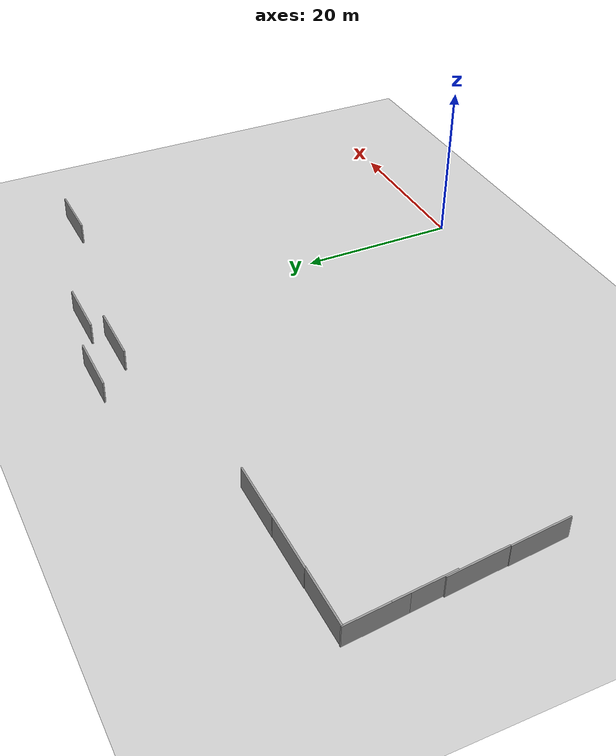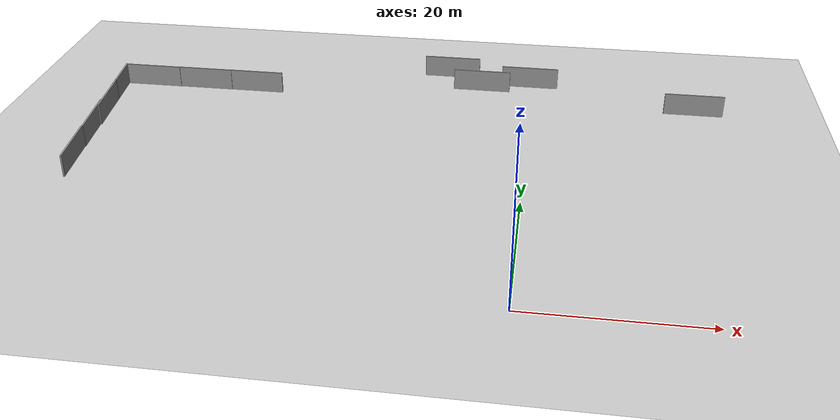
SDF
<sdf version="1.6">
 <world name="default">
  <light name="sun" type="directional">
   <pose>0 0 15 0 -0 0</pose>
   <diffuse>0.8 0.8 0.8 1</diffuse>
   <specular>0.2 0.2 0.2 1</specular>
   <attenuation>
    <range>1000</range>
    <constant>0.9</constant>
    <linear>0.01</linear>
    <quadratic>0.001</quadratic>
   </attenuation>
   <direction>-0.5 0.1 -0.9</direction>
  </light>
  <model name="ground_plane">
   <static>1</static>
   <link name="link">
    <collision name="collision">
     <geometry><plane><normal>0 0 1</normal><size>100 100</size></plane></geometry>
     <surface><friction><ode><mu>100</mu><mu2>50</mu2></ode></friction></surface>
    </collision>
    <visual name="visual">
     <transparency>1</transparency>
     <cast_shadows>0</cast_shadows>
     <geometry><plane><normal>0 0 1</normal><size>100 100</size></plane></geometry>
     <material>
      <script><uri>file://media/materials/scripts/gazebo.material</uri><name>Gazebo/Grey</name></script>
     </material>
    </visual>
   </link>
  </model>
  <gravity>0 0 -9.8</gravity>
  <magnetic_field>6e-06 2.3e-05 -4.2e-05</magnetic_field>
  <atmosphere type="adiabatic"/>
  <physics name="default_physics" default="0" type="ode">
   <max_step_size>0.001</max_step_size>
   <real_time_factor>1</real_time_factor>
   <real_time_update_rate>1000</real_time_update_rate>
  </physics>
  <scene><ambient>0.4 0.4 0.4 1</ambient><background>0.7 0.7 0.7 1</background><shadows>1</shadows></scene>
  <spherical_coordinates>
   <surface_model>EARTH_WGS84</surface_model>
   <latitude_deg>0</latitude_deg>
   <longitude_deg>0</longitude_deg>
   <elevation>0</elevation>
   <heading_deg>0</heading_deg>
  </spherical_coordinates>
  <model name="grey_wall">
   <static>1</static>
   <link name="link">
    <pose>0 0 1.4 0 -0 0</pose>
    <collision name="collision"><geometry><box><size>7.5 0.2 2.8</size></box></geometry></collision>
    <visual name="visual">
     <cast_shadows>0</cast_shadows>
     <geometry><box><size>7.5 0.2 2.8</size></box></geometry>
     <material>
      <script>
       <uri>model://grey_wall/materials/scripts</uri>
       <uri>model://grey_wall/materials/textures</uri>
       <name>vrc/grey_wall</name>
      </script>
     </material>
    </visual>
   </link>
   <pose>20.945 45.2821 0 0 -0 0</pose>
  </model>
  <model name="grey_wall_0">
   <static>1</static>
   <link name="link">
    <pose>0 0 1.4 0 -0 0</pose>
    <collision name="collision"><geometry><box><size>7.5 0.2 2.8</size></box></geometry></collision>
    <visual name="visual">
     <cast_shadows>0</cast_shadows>
     <geometry><box><size>7.5 0.2 2.8</size></box></geometry>
     <material>
      <script>
       <uri>model://grey_wall/materials/scripts</uri>
       <uri>model://grey_wall/materials/textures</uri>
       <name>vrc/grey_wall</name>
      </script>
     </material>
    </visual>
   </link>
   <pose>-0.40743 50.8715 0 0 -0 0</pose>
  </model>
  <model name="grey_wall_1">
   <static>1</static>
   <link name="link">
    <pose>0 0 1.4 0 -0 0</pose>
    <collision name="collision"><geometry><box><size>7.5 0.2 2.8</size></box></geometry></collision>
    <visual name="visual">
     <cast_shadows>0</cast_shadows>
     <geometry><box><size>7.5 0.2 2.8</size></box></geometry>
     <material>
      <script>
       <uri>model://grey_wall/materials/scripts</uri>
       <uri>model://grey_wall/materials/textures</uri>
       <name>vrc/grey_wall</name>
      </script>
     </material>
    </visual>
   </link>
   <pose>-6.76037 48.9459 0 0 -0 0</pose>
  </model>
  <model name="grey_wall_2">
   <static>1</static>
   <link name="link">
    <pose>0 0 1.4 0 -0 0</pose>
    <collision name="collision"><geometry><box><size>7.5 0.2 2.8</size></box></geometry></collision>
    <visual name="visual">
     <cast_shadows>0</cast_shadows>
     <geometry><box><size>7.5 0.2 2.8</size></box></geometry>
     <material>
      <script>
       <uri>model://grey_wall/materials/scripts</uri>
       <uri>model://grey_wall/materials/textures</uri>
       <name>vrc/grey_wall</name>
      </script>
     </material>
    </visual>
   </link>
   <pose>-11.149 52.8969 0 0 -0 0</pose>
  </model>
  <model name="grey_wall_3">
   <static>1</static>
   <link name="link">
    <pose>0 0 1.4 0 -0 0</pose>
    <collision name="collision"><geometry><box><size>7.5 0.2 2.8</size></box></geometry></collision>
    <visual name="visual">
     <cast_shadows>0</cast_shadows>
     <geometry><box><size>7.5 0.2 2.8</size></box></geometry>
     <material>
      <script>
       <uri>model://grey_wall/materials/scripts</uri>
       <uri>model://grey_wall/materials/textures</uri>
       <name>vrc/grey_wall</name>
      </script>
     </material>
    </visual>
   </link>
   <pose>-37.1072 44.3981 0 0 -0 0</pose>
  </model>
  <model name="grey_wall_4">
   <static>1</static>
   <link name="link">
    <pose>0 0 1.4 0 -0 0</pose>
    <collision name="collision"><geometry><box><size>7.5 0.2 2.8</size></box></geometry></collision>
    <visual name="visual">
     <cast_shadows>0</cast_shadows>
     <geometry><box><size>7.5 0.2 2.8</size></box></geometry>
     <material>
      <script>
       <uri>model://grey_wall/materials/scripts</uri>
       <uri>model://grey_wall/materials/textures</uri>
       <name>vrc/grey_wall</name>
      </script>
     </material>
    </visual>
   </link>
   <pose>-44.1478 44.3641 0 0 -0 0</pose>
  </model>
  <model name="grey_wall_5">
   <static>1</static>
   <link name="link">
    <pose>0 0 1.4 0 -0 0</pose>
    <collision name="collision"><geometry><box><size>7.5 0.2 2.8</size></box></geometry></collision>
    <visual name="visual">
     <cast_shadows>0</cast_shadows>
     <geometry><box><size>7.5 0.2 2.8</size></box></geometry>
     <material>
      <script>
       <uri>model://grey_wall/materials/scripts</uri>
       <uri>model://grey_wall/materials/textures</uri>
       <name>vrc/grey_wall</name>
      </script>
     </material>
    </visual>
   </link>
   <pose>-51.3419 44.3159 0 0 -0 0</pose>
  </model>
  <model name="grey_wall_6">
   <static>1</static>
   <link name="link">
    <pose>0 0 1.4 0 -0 0</pose>
    <collision name="collision"><geometry><box><size>7.5 0.2 2.8</size></box></geometry></collision>
    <visual name="visual">
     <cast_shadows>0</cast_shadows>
     <geometry><box><size>7.5 0.2 2.8</size></box></geometry>
     <material>
      <script>
       <uri>model://grey_wall/materials/scripts</uri>
       <uri>model://grey_wall/materials/textures</uri>
       <name>vrc/grey_wall</name>
      </script>
     </material>
    </visual>
   </link>
   <pose>-53.2817 21.9356 0 0 0 -1.48014</pose>
  </model>
  <model name="grey_wall_6_clone">
   <static>1</static>
   <link name="link">
    <pose>0 0 1.4 0 -0 0</pose>
    <collision name="collision"><geometry><box><size>7.5 0.2 2.8</size></box></geometry></collision>
    <visual name="visual">
     <cast_shadows>0</cast_shadows>
     <geometry><box><size>7.5 0.2 2.8</size></box></geometry>
     <material>
      <script>
       <uri>model://grey_wall/materials/scripts</uri>
       <uri>model://grey_wall/materials/textures</uri>
       <name>vrc/grey_wall</name>
      </script>
     </material>
    </visual>
   </link>
   <pose>-53.8915 29.4209 0 0 0 -1.48014</pose>
  </model>
  <model name="grey_wall_6_clone_0">
   <static>1</static>
   <link name="link">
    <pose>0 0 1.4 0 -0 0</pose>
    <collision name="collision"><geometry><box><size>7.5 0.2 2.8</size></box></geometry></collision>
    <visual name="visual">
     <cast_shadows>0</cast_shadows>
     <geometry><box><size>7.5 0.2 2.8</size></box></geometry>
     <material>
      <script>
       <uri>model://grey_wall/materials/scripts</uri>
       <uri>model://grey_wall/materials/textures</uri>
       <name>vrc/grey_wall</name>
      </script>
     </material>
    </visual>
   </link>
   <pose>-54.2859 35.338 0 0 0 -1.48014</pose>
  </model>
  <model name="grey_wall_6_clone_1">
   <static>1</static>
   <link name="link">
    <pose>0 0 1.4 0 -0 0</pose>
    <collision name="collision"><geometry><box><size>7.5 0.2 2.8</size></box></geometry></collision>
    <visual name="visual">
     <cast_shadows>0</cast_shadows>
     <geometry><box><size>7.5 0.2 2.8</size></box></geometry>
     <material>
      <script>
       <uri>model://grey_wall/materials/scripts</uri>
       <uri>model://grey_wall/materials/textures</uri>
       <name>vrc/grey_wall</name>
      </script>
     </material>
    </visual>
   </link>
   <pose>-54.7866 40.717 0 0 0 -1.48014</pose>
  </model>
 </world>
</sdf>
